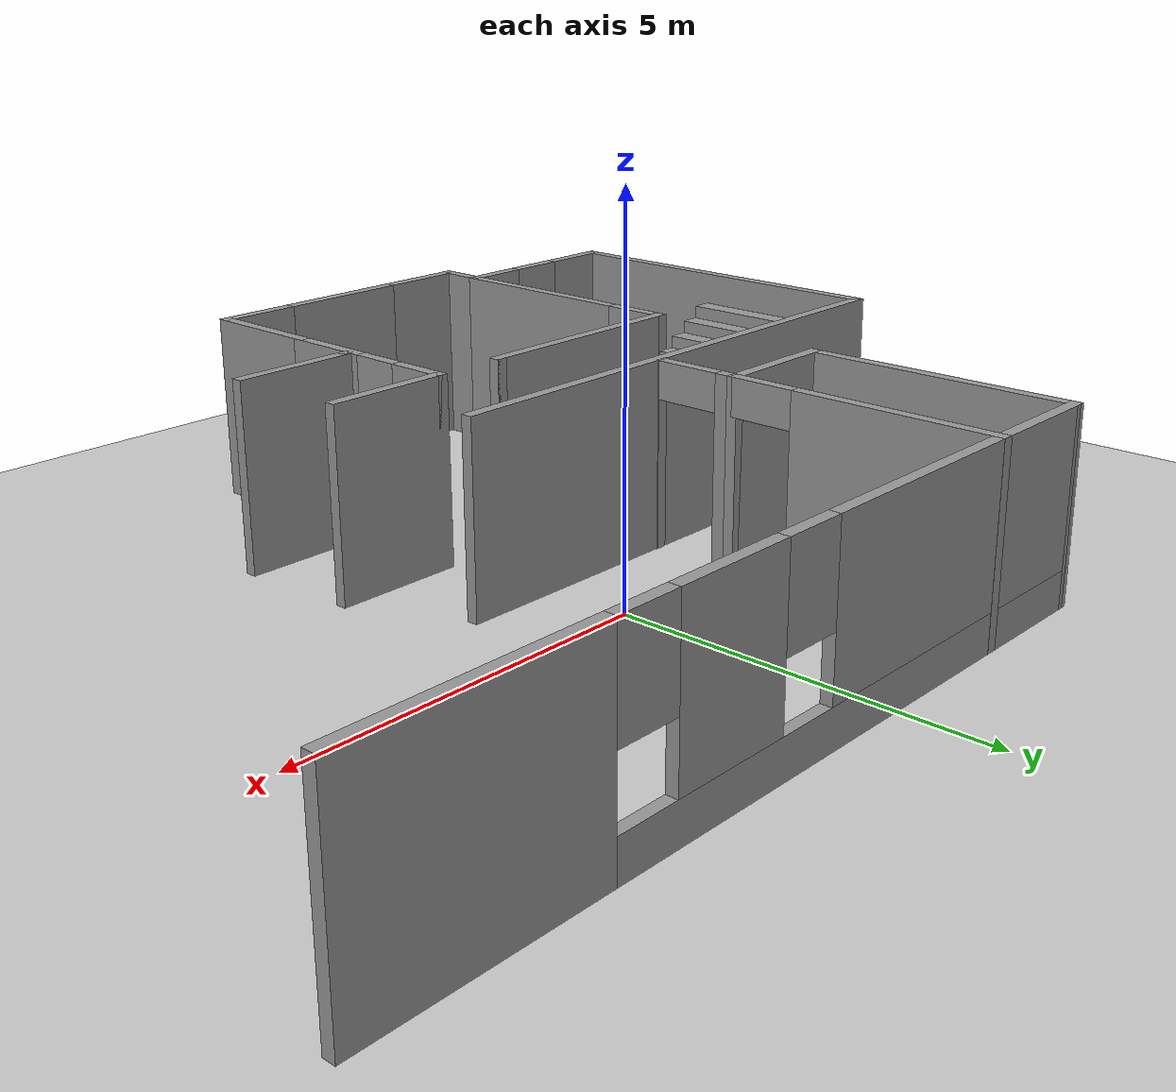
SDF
<sdf version="1.7">
 <world name="default">
  <model name="ground_plane">
   <static>1</static>
   <link name="link">
    <collision name="collision">
     <geometry><plane><normal>0 0 1</normal><size>100 100</size></plane></geometry>
     <surface>
      <contact><collide_bitmask>65535</collide_bitmask></contact>
      <friction><ode><mu>100</mu><mu2>50</mu2></ode></friction>
     </surface>
    </collision>
    <visual name="visual">
     <cast_shadows>0</cast_shadows>
     <geometry><plane><normal>0 0 1</normal><size>100 100</size></plane></geometry>
     <material>
      <script><uri>file://media/materials/scripts/gazebo.material</uri><name>Gazebo/Grey</name></script>
     </material>
    </visual>
   </link>
  </model>
  <model name="Floorplan4">
   <pose>0.528647 -1.59814 0 0 -0 0</pose>
   <link name="Stairs_0">
    <visual name="Stairs_0_Visual_0">
     <pose>-1.48224 -0.300305 0.083333 0 -0 -1.5708</pose>
     <geometry><box><size>1.373 0.259133 0.166667</size></box></geometry>
     <material>
      <script><uri>file://media/materials/scripts/gazebo.material</uri><name>Gazebo/Grey</name></script>
      <ambient>1 1 1 1</ambient>
     </material>
     <meta><layer>0</layer></meta>
    </visual>
    <collision name="Stairs_0_Collision_0">
     <geometry><box><size>1.373 0.259133 0.166667</size></box></geometry>
     <pose>-1.48224 -0.300305 0.083333 0 -0 -1.5708</pose>
    </collision>
    <visual name="Stairs_0_Visual_1">
     <pose>-1.74138 -0.300305 0.25 0 -0 -1.5708</pose>
     <geometry><box><size>1.373 0.259133 0.166667</size></box></geometry>
     <material>
      <script><uri>file://media/materials/scripts/gazebo.material</uri><name>Gazebo/Grey</name></script>
      <ambient>1 1 1 1</ambient>
     </material>
     <meta><layer>0</layer></meta>
    </visual>
    <collision name="Stairs_0_Collision_1">
     <geometry><box><size>1.373 0.259133 0.166667</size></box></geometry>
     <pose>-1.74138 -0.300305 0.25 0 -0 -1.5708</pose>
    </collision>
    <visual name="Stairs_0_Visual_2">
     <pose>-2.00051 -0.300305 0.416667 0 -0 -1.5708</pose>
     <geometry><box><size>1.373 0.259133 0.166667</size></box></geometry>
     <material>
      <script><uri>file://media/materials/scripts/gazebo.material</uri><name>Gazebo/Grey</name></script>
      <ambient>1 1 1 1</ambient>
     </material>
     <meta><layer>0</layer></meta>
    </visual>
    <collision name="Stairs_0_Collision_2">
     <geometry><box><size>1.373 0.259133 0.166667</size></box></geometry>
     <pose>-2.00051 -0.300305 0.416667 0 -0 -1.5708</pose>
    </collision>
    <visual name="Stairs_0_Visual_3">
     <pose>-2.25964 -0.300305 0.583333 0 -0 -1.5708</pose>
     <geometry><box><size>1.373 0.259133 0.166667</size></box></geometry>
     <material>
      <script><uri>file://media/materials/scripts/gazebo.material</uri><name>Gazebo/Grey</name></script>
      <ambient>1 1 1 1</ambient>
     </material>
     <meta><layer>0</layer></meta>
    </visual>
    <collision name="Stairs_0_Collision_3">
     <geometry><box><size>1.373 0.259133 0.166667</size></box></geometry>
     <pose>-2.25964 -0.300305 0.583333 0 -0 -1.5708</pose>
    </collision>
    <visual name="Stairs_0_Visual_4">
     <pose>-2.51878 -0.300305 0.75 0 -0 -1.5708</pose>
     <geometry><box><size>1.373 0.259133 0.166667</size></box></geometry>
     <material>
      <script><uri>file://media/materials/scripts/gazebo.material</uri><name>Gazebo/Grey</name></script>
      <ambient>1 1 1 1</ambient>
     </material>
     <meta><layer>0</layer></meta>
    </visual>
    <collision name="Stairs_0_Collision_4">
     <geometry><box><size>1.373 0.259133 0.166667</size></box></geometry>
     <pose>-2.51878 -0.300305 0.75 0 -0 -1.5708</pose>
    </collision>
    <visual name="Stairs_0_Visual_5">
     <pose>-2.77791 -0.300305 0.916667 0 -0 -1.5708</pose>
     <geometry><box><size>1.373 0.259133 0.166667</size></box></geometry>
     <material>
      <script><uri>file://media/materials/scripts/gazebo.material</uri><name>Gazebo/Grey</name></script>
      <ambient>1 1 1 1</ambient>
     </material>
     <meta><layer>0</layer></meta>
    </visual>
    <collision name="Stairs_0_Collision_5">
     <geometry><box><size>1.373 0.259133 0.166667</size></box></geometry>
     <pose>-2.77791 -0.300305 0.916667 0 -0 -1.5708</pose>
    </collision>
    <visual name="Stairs_0_Visual_6">
     <pose>-3.03704 -0.300305 1.08333 0 -0 -1.5708</pose>
     <geometry><box><size>1.373 0.259133 0.166667</size></box></geometry>
     <material>
      <script><uri>file://media/materials/scripts/gazebo.material</uri><name>Gazebo/Grey</name></script>
      <ambient>1 1 1 1</ambient>
     </material>
     <meta><layer>0</layer></meta>
    </visual>
    <collision name="Stairs_0_Collision_6">
     <geometry><box><size>1.373 0.259133 0.166667</size></box></geometry>
     <pose>-3.03704 -0.300305 1.08333 0 -0 -1.5708</pose>
    </collision>
    <visual name="Stairs_0_Visual_7">
     <pose>-3.29618 -0.300305 1.25 0 -0 -1.5708</pose>
     <geometry><box><size>1.373 0.259133 0.166667</size></box></geometry>
     <material>
      <script><uri>file://media/materials/scripts/gazebo.material</uri><name>Gazebo/Grey</name></script>
      <ambient>1 1 1 1</ambient>
     </material>
     <meta><layer>0</layer></meta>
    </visual>
    <collision name="Stairs_0_Collision_7">
     <geometry><box><size>1.373 0.259133 0.166667</size></box></geometry>
     <pose>-3.29618 -0.300305 1.25 0 -0 -1.5708</pose>
    </collision>
    <visual name="Stairs_0_Visual_8">
     <pose>-3.55531 -0.300305 1.41667 0 -0 -1.5708</pose>
     <geometry><box><size>1.373 0.259133 0.166667</size></box></geometry>
     <material>
      <script><uri>file://media/materials/scripts/gazebo.material</uri><name>Gazebo/Grey</name></script>
      <ambient>1 1 1 1</ambient>
     </material>
     <meta><layer>0</layer></meta>
    </visual>
    <collision name="Stairs_0_Collision_8">
     <geometry><box><size>1.373 0.259133 0.166667</size></box></geometry>
     <pose>-3.55531 -0.300305 1.41667 0 -0 -1.5708</pose>
    </collision>
    <visual name="Stairs_0_Visual_9">
     <pose>-3.81444 -0.300305 1.58333 0 -0 -1.5708</pose>
     <geometry><box><size>1.373 0.259133 0.166667</size></box></geometry>
     <material>
      <script><uri>file://media/materials/scripts/gazebo.material</uri><name>Gazebo/Grey</name></script>
      <ambient>1 1 1 1</ambient>
     </material>
     <meta><layer>0</layer></meta>
    </visual>
    <collision name="Stairs_0_Collision_9">
     <geometry><box><size>1.373 0.259133 0.166667</size></box></geometry>
     <pose>-3.81444 -0.300305 1.58333 0 -0 -1.5708</pose>
    </collision>
    <visual name="Stairs_0_Visual_10">
     <pose>-4.07358 -0.300305 1.75 0 -0 -1.5708</pose>
     <geometry><box><size>1.373 0.259133 0.166667</size></box></geometry>
     <material>
      <script><uri>file://media/materials/scripts/gazebo.material</uri><name>Gazebo/Grey</name></script>
      <ambient>1 1 1 1</ambient>
     </material>
     <meta><layer>0</layer></meta>
    </visual>
    <collision name="Stairs_0_Collision_10">
     <geometry><box><size>1.373 0.259133 0.166667</size></box></geometry>
     <pose>-4.07358 -0.300305 1.75 0 -0 -1.5708</pose>
    </collision>
    <visual name="Stairs_0_Visual_11">
     <pose>-4.33271 -0.300305 1.91667 0 -0 -1.5708</pose>
     <geometry><box><size>1.373 0.259133 0.166667</size></box></geometry>
     <material>
      <script><uri>file://media/materials/scripts/gazebo.material</uri><name>Gazebo/Grey</name></script>
      <ambient>1 1 1 1</ambient>
     </material>
     <meta><layer>0</layer></meta>
    </visual>
    <collision name="Stairs_0_Collision_11">
     <geometry><box><size>1.373 0.259133 0.166667</size></box></geometry>
     <pose>-4.33271 -0.300305 1.91667 0 -0 -1.5708</pose>
    </collision>
    <visual name="Stairs_0_Visual_12">
     <pose>-4.59184 -0.300305 2.08333 0 -0 -1.5708</pose>
     <geometry><box><size>1.373 0.259133 0.166667</size></box></geometry>
     <material>
      <script><uri>file://media/materials/scripts/gazebo.material</uri><name>Gazebo/Grey</name></script>
      <ambient>1 1 1 1</ambient>
     </material>
     <meta><layer>0</layer></meta>
    </visual>
    <collision name="Stairs_0_Collision_12">
     <geometry><box><size>1.373 0.259133 0.166667</size></box></geometry>
     <pose>-4.59184 -0.300305 2.08333 0 -0 -1.5708</pose>
    </collision>
    <visual name="Stairs_0_Visual_13">
     <pose>-4.85098 -0.300305 2.25 0 -0 -1.5708</pose>
     <geometry><box><size>1.373 0.259133 0.166667</size></box></geometry>
     <material>
      <script><uri>file://media/materials/scripts/gazebo.material</uri><name>Gazebo/Grey</name></script>
      <ambient>1 1 1 1</ambient>
     </material>
     <meta><layer>0</layer></meta>
    </visual>
    <collision name="Stairs_0_Collision_13">
     <geometry><box><size>1.373 0.259133 0.166667</size></box></geometry>
     <pose>-4.85098 -0.300305 2.25 0 -0 -1.5708</pose>
    </collision>
    <visual name="Stairs_0_Visual_14">
     <pose>-5.11011 -0.300305 2.41667 0 -0 -1.5708</pose>
     <geometry><box><size>1.373 0.259133 0.166667</size></box></geometry>
     <material>
      <script><uri>file://media/materials/scripts/gazebo.material</uri><name>Gazebo/Grey</name></script>
      <ambient>1 1 1 1</ambient>
     </material>
     <meta><layer>0</layer></meta>
    </visual>
    <collision name="Stairs_0_Collision_14">
     <geometry><box><size>1.373 0.259133 0.166667</size></box></geometry>
     <pose>-5.11011 -0.300305 2.41667 0 -0 -1.5708</pose>
    </collision>
   </link>
   <link name="Wall_20">
    <collision name="Wall_20_Collision">
     <geometry><box><size>7.75 0.15 2.5</size></box></geometry>
     <pose>0 0 1.25 0 -0 0</pose>
    </collision>
    <visual name="Wall_20_Visual">
     <pose>0 0 1.25 0 -0 0</pose>
     <geometry><box><size>7.75 0.15 2.5</size></box></geometry>
     <material>
      <script><uri>file://media/materials/scripts/gazebo.material</uri><name>Gazebo/Grey</name></script>
      <ambient>1 1 1 1</ambient>
     </material>
     <meta><layer>0</layer></meta>
    </visual>
    <pose>-3.05028 0.443986 0 0 -0 3.14159</pose>
   </link>
   <link name="Wall_21">
    <collision name="Wall_21_Collision">
     <geometry><box><size>5.25 0.15 2.5</size></box></geometry>
     <pose>0 0 1.25 0 -0 0</pose>
    </collision>
    <visual name="Wall_21_Visual">
     <pose>0 0 1.25 0 -0 0</pose>
     <geometry><box><size>5.25 0.15 2.5</size></box></geometry>
     <material>
      <script><uri>file://media/materials/scripts/gazebo.material</uri><name>Gazebo/Grey</name></script>
      <ambient>1 1 1 1</ambient>
     </material>
     <meta><layer>0</layer></meta>
    </visual>
    <pose>-6.85028 -2.10601 0 0 -0 -1.5708</pose>
   </link>
   <link name="Wall_22">
    <pose>-5.55028 -4.65601 0 0 -0 0</pose>
    <visual name="Wall_22_Visual_0">
     <pose>-0.858994 0 1.25 0 -0 0</pose>
     <geometry><box><size>1.03201 0.15 2.5</size></box></geometry>
     <material>
      <script><uri>file://media/materials/scripts/gazebo.material</uri><name>Gazebo/Grey</name></script>
      <ambient>1 1 1 1</ambient>
     </material>
     <meta><layer>0</layer></meta>
    </visual>
    <collision name="Wall_22_Collision_0">
     <geometry><box><size>1.03201 0.15 2.5</size></box></geometry>
     <pose>-0.858994 0 1.25 0 -0 0</pose>
    </collision>
    <visual name="Wall_22_Visual_1">
     <pose>0.516006 0 0.25 0 -0 0</pose>
     <geometry><box><size>1.71799 0.15 0.5</size></box></geometry>
     <material>
      <script><uri>file://media/materials/scripts/gazebo.material</uri><name>Gazebo/Grey</name></script>
      <ambient>1 1 1 1</ambient>
     </material>
     <meta><layer>0</layer></meta>
    </visual>
    <collision name="Wall_22_Collision_1">
     <geometry><box><size>1.71799 0.15 0.5</size></box></geometry>
     <pose>0.516006 0 0.25 0 -0 0</pose>
    </collision>
    <visual name="Wall_22_Visual_2">
     <pose>0.916006 0 1.5 0 -0 0</pose>
     <geometry><box><size>0.917989 0.15 2</size></box></geometry>
     <material>
      <script><uri>file://media/materials/scripts/gazebo.material</uri><name>Gazebo/Grey</name></script>
      <ambient>1 1 1 1</ambient>
     </material>
     <meta><layer>0</layer></meta>
    </visual>
    <collision name="Wall_22_Collision_2">
     <geometry><box><size>0.917989 0.15 2</size></box></geometry>
     <pose>0.916006 0 1.5 0 -0 0</pose>
    </collision>
    <visual name="Wall_22_Visual_3">
     <pose>0.057011 0 1.9 0 -0 0</pose>
     <geometry><box><size>0.8 0.15 1.2</size></box></geometry>
     <material>
      <script><uri>file://media/materials/scripts/gazebo.material</uri><name>Gazebo/Grey</name></script>
      <ambient>1 1 1 1</ambient>
     </material>
     <meta><layer>0</layer></meta>
    </visual>
    <collision name="Wall_22_Collision_3">
     <geometry><box><size>0.8 0.15 1.2</size></box></geometry>
     <pose>0.057011 0 1.9 0 -0 0</pose>
    </collision>
   </link>
   <link name="Wall_23">
    <collision name="Wall_23_Collision">
     <geometry><box><size>0.75 0.15 2.5</size></box></geometry>
     <pose>0 0 1.25 0 -0 0</pose>
    </collision>
    <visual name="Wall_23_Visual">
     <pose>0 0 1.25 0 -0 0</pose>
     <geometry><box><size>0.75 0.15 2.5</size></box></geometry>
     <material>
      <script><uri>file://media/materials/scripts/gazebo.material</uri><name>Gazebo/Grey</name></script>
      <ambient>1 1 1 1</ambient>
     </material>
     <meta><layer>0</layer></meta>
    </visual>
    <pose>-4.25028 -4.95601 0 0 -0 -1.5708</pose>
   </link>
   <link name="Wall_24">
    <pose>-2.20028 -5.25601 0 0 -0 0</pose>
    <visual name="Wall_24_Visual_0">
     <pose>-1.49218 0 1.25 0 -0 0</pose>
     <geometry><box><size>1.26565 0.15 2.5</size></box></geometry>
     <material>
      <script><uri>file://media/materials/scripts/gazebo.material</uri><name>Gazebo/Grey</name></script>
      <ambient>1 1 1 1</ambient>
     </material>
     <meta><layer>0</layer></meta>
    </visual>
    <collision name="Wall_24_Collision_0">
     <geometry><box><size>1.26565 0.15 2.5</size></box></geometry>
     <pose>-1.49218 0 1.25 0 -0 0</pose>
    </collision>
    <visual name="Wall_24_Visual_1">
     <pose>0.632824 0 0.25 0 -0 0</pose>
     <geometry><box><size>2.98435 0.15 0.5</size></box></geometry>
     <material>
      <script><uri>file://media/materials/scripts/gazebo.material</uri><name>Gazebo/Grey</name></script>
      <ambient>1 1 1 1</ambient>
     </material>
     <meta><layer>0</layer></meta>
    </visual>
    <collision name="Wall_24_Collision_1">
     <geometry><box><size>2.98435 0.15 0.5</size></box></geometry>
     <pose>0.632824 0 0.25 0 -0 0</pose>
    </collision>
    <visual name="Wall_24_Visual_2">
     <pose>1.55421 0 1.5 0 -0 0</pose>
     <geometry><box><size>1.14157 0.15 2</size></box></geometry>
     <material>
      <script><uri>file://media/materials/scripts/gazebo.material</uri><name>Gazebo/Grey</name></script>
      <ambient>1 1 1 1</ambient>
     </material>
     <meta><layer>0</layer></meta>
    </visual>
    <collision name="Wall_24_Collision_2">
     <geometry><box><size>1.14157 0.15 2</size></box></geometry>
     <pose>1.55421 0 1.5 0 -0 0</pose>
    </collision>
    <visual name="Wall_24_Visual_3">
     <pose>0.062037 0 1.9 0 -0 0</pose>
     <geometry><box><size>1.84278 0.15 1.2</size></box></geometry>
     <material>
      <script><uri>file://media/materials/scripts/gazebo.material</uri><name>Gazebo/Grey</name></script>
      <ambient>1 1 1 1</ambient>
     </material>
     <meta><layer>0</layer></meta>
    </visual>
    <collision name="Wall_24_Collision_3">
     <geometry><box><size>1.84278 0.15 1.2</size></box></geometry>
     <pose>0.062037 0 1.9 0 -0 0</pose>
    </collision>
   </link>
   <link name="Wall_25">
    <collision name="Wall_25_Collision">
     <geometry><box><size>1.75 0.15 2.5</size></box></geometry>
     <pose>0 0 1.25 0 -0 0</pose>
    </collision>
    <visual name="Wall_25_Visual">
     <pose>0 0 1.25 0 -0 0</pose>
     <geometry><box><size>1.75 0.15 2.5</size></box></geometry>
     <material>
      <script><uri>file://media/materials/scripts/gazebo.material</uri><name>Gazebo/Grey</name></script>
      <ambient>1 1 1 1</ambient>
     </material>
     <meta><layer>0</layer></meta>
    </visual>
    <pose>-0.150279 -4.45601 0 0 -0 1.5708</pose>
   </link>
   <link name="Wall_26">
    <pose>-0.150279 -2.35601 0 0 -0 1.5708</pose>
    <visual name="Wall_26_Visual_0">
     <pose>-0.749014 0 1.25 0 -0 0</pose>
     <geometry><box><size>1.25197 0.15 2.5</size></box></geometry>
     <material>
      <script><uri>file://media/materials/scripts/gazebo.material</uri><name>Gazebo/Grey</name></script>
      <ambient>1 1 1 1</ambient>
     </material>
     <meta><layer>0</layer></meta>
    </visual>
    <collision name="Wall_26_Collision_0">
     <geometry><box><size>1.25197 0.15 2.5</size></box></geometry>
     <pose>-0.749014 0 1.25 0 -0 0</pose>
    </collision>
    <visual name="Wall_26_Visual_1">
     <pose>0.956973 0 1.25 0 -0 0</pose>
     <geometry><box><size>0.836053 0.15 2.5</size></box></geometry>
     <material>
      <script><uri>file://media/materials/scripts/gazebo.material</uri><name>Gazebo/Grey</name></script>
      <ambient>1 1 1 1</ambient>
     </material>
     <meta><layer>0</layer></meta>
    </visual>
    <collision name="Wall_26_Collision_1">
     <geometry><box><size>0.836053 0.15 2.5</size></box></geometry>
     <pose>0.956973 0 1.25 0 -0 0</pose>
    </collision>
    <visual name="Wall_26_Visual_2">
     <pose>0.20796 0 2.25 0 -0 0</pose>
     <geometry><box><size>0.661975 0.15 0.5</size></box></geometry>
     <material>
      <script><uri>file://media/materials/scripts/gazebo.material</uri><name>Gazebo/Grey</name></script>
      <ambient>1 1 1 1</ambient>
     </material>
     <meta><layer>0</layer></meta>
    </visual>
    <collision name="Wall_26_Collision_2">
     <geometry><box><size>0.661975 0.15 0.5</size></box></geometry>
     <pose>0.20796 0 2.25 0 -0 0</pose>
    </collision>
   </link>
   <link name="Wall_27">
    <collision name="Wall_27_Collision">
     <geometry><box><size>1.75 0.15 2.5</size></box></geometry>
     <pose>0 0 1.25 0 -0 0</pose>
    </collision>
    <visual name="Wall_27_Visual">
     <pose>0 0 1.25 0 -0 0</pose>
     <geometry><box><size>1.75 0.15 2.5</size></box></geometry>
     <material>
      <script><uri>file://media/materials/scripts/gazebo.material</uri><name>Gazebo/Grey</name></script>
      <ambient>1 1 1 1</ambient>
     </material>
     <meta><layer>0</layer></meta>
    </visual>
    <pose>0.649721 -1.05601 0 0 -0 0</pose>
   </link>
   <link name="Wall_30">
    <collision name="Wall_30_Collision">
     <geometry><box><size>1.75 0.15 2.5</size></box></geometry>
     <pose>0 0 1.25 0 -0 0</pose>
    </collision>
    <visual name="Wall_30_Visual">
     <pose>0 0 1.25 0 -0 0</pose>
     <geometry><box><size>1.75 0.15 2.5</size></box></geometry>
     <material>
      <script><uri>file://media/materials/scripts/gazebo.material</uri><name>Gazebo/Grey</name></script>
      <ambient>1 1 1 1</ambient>
     </material>
     <meta><layer>0</layer></meta>
    </visual>
    <pose>0.749721 -2.65601 0 0 -0 3.14159</pose>
   </link>
   <link name="Wall_31">
    <collision name="Wall_31_Collision">
     <geometry><box><size>0.15 0.15 2.5</size></box></geometry>
     <pose>0 0 1.25 0 -0 0</pose>
    </collision>
    <visual name="Wall_31_Visual">
     <pose>0 0 1.25 0 -0 0</pose>
     <geometry><box><size>0.15 0.15 2.5</size></box></geometry>
     <material>
      <script><uri>file://media/materials/scripts/gazebo.material</uri><name>Gazebo/Grey</name></script>
      <ambient>1 1 1 1</ambient>
     </material>
     <meta><layer>0</layer></meta>
    </visual>
    <pose>-0.050279 -2.65601 0 0 -0 0</pose>
   </link>
   <link name="Wall_33">
    <pose>-4.25028 -2.85601 0 0 -0 1.5708</pose>
    <visual name="Wall_33_Visual_0">
     <pose>-0.463048 0 1.25 0 -0 0</pose>
     <geometry><box><size>2.8239 0.15 2.5</size></box></geometry>
     <material>
      <script><uri>file://media/materials/scripts/gazebo.material</uri><name>Gazebo/Grey</name></script>
      <ambient>1 1 1 1</ambient>
     </material>
     <meta><layer>0</layer></meta>
    </visual>
    <collision name="Wall_33_Collision_0">
     <geometry><box><size>2.8239 0.15 2.5</size></box></geometry>
     <pose>-0.463048 0 1.25 0 -0 0</pose>
    </collision>
    <visual name="Wall_33_Visual_1">
     <pose>1.7945 0 1.25 0 -0 0</pose>
     <geometry><box><size>0.161005 0.15 2.5</size></box></geometry>
     <material>
      <script><uri>file://media/materials/scripts/gazebo.material</uri><name>Gazebo/Grey</name></script>
      <ambient>1 1 1 1</ambient>
     </material>
     <meta><layer>0</layer></meta>
    </visual>
    <collision name="Wall_33_Collision_1">
     <geometry><box><size>0.161005 0.15 2.5</size></box></geometry>
     <pose>1.7945 0 1.25 0 -0 0</pose>
    </collision>
    <visual name="Wall_33_Visual_2">
     <pose>1.33145 0 2.25 0 -0 0</pose>
     <geometry><box><size>0.765091 0.15 0.5</size></box></geometry>
     <material>
      <script><uri>file://media/materials/scripts/gazebo.material</uri><name>Gazebo/Grey</name></script>
      <ambient>1 1 1 1</ambient>
     </material>
     <meta><layer>0</layer></meta>
    </visual>
    <collision name="Wall_33_Collision_2">
     <geometry><box><size>0.765091 0.15 0.5</size></box></geometry>
     <pose>1.33145 0 2.25 0 -0 0</pose>
    </collision>
   </link>
   <link name="Wall_34">
    <collision name="Wall_34_Collision">
     <geometry><box><size>3.25 0.15 2.5</size></box></geometry>
     <pose>0 0 1.25 0 -0 0</pose>
    </collision>
    <visual name="Wall_34_Visual">
     <pose>0 0 1.25 0 -0 0</pose>
     <geometry><box><size>3.25 0.15 2.5</size></box></geometry>
     <material>
      <script><uri>file://media/materials/scripts/gazebo.material</uri><name>Gazebo/Grey</name></script>
      <ambient>1 1 1 1</ambient>
     </material>
     <meta><layer>0</layer></meta>
    </visual>
    <pose>-2.70028 -1.05601 0 0 -0 0</pose>
   </link>
   <link name="Wall_35">
    <collision name="Wall_35_Collision">
     <geometry><box><size>0.15 0.15 2.5</size></box></geometry>
     <pose>0 0 1.25 0 -0 0</pose>
    </collision>
    <visual name="Wall_35_Visual">
     <pose>0 0 1.25 0 -0 0</pose>
     <geometry><box><size>0.15 0.15 2.5</size></box></geometry>
     <material>
      <script><uri>file://media/materials/scripts/gazebo.material</uri><name>Gazebo/Grey</name></script>
      <ambient>1 1 1 1</ambient>
     </material>
     <meta><layer>0</layer></meta>
    </visual>
    <pose>-1.15028 -1.05601 0 0 -0 0</pose>
   </link>
   <link name="Wall_5">
    <pose>1.34854 5.23924 0 0 -0 3.14159</pose>
    <visual name="Wall_5_Visual_0">
     <pose>-3.98357 0 1.25 0 -0 0</pose>
     <geometry><box><size>3.03285 0.15 2.5</size></box></geometry>
     <material>
      <script><uri>file://media/materials/scripts/gazebo.material</uri><name>Gazebo/Grey</name></script>
      <ambient>1 1 1 1</ambient>
     </material>
     <meta><layer>0</layer></meta>
    </visual>
    <collision name="Wall_5_Collision_0">
     <geometry><box><size>3.03285 0.15 2.5</size></box></geometry>
     <pose>-3.98357 0 1.25 0 -0 0</pose>
    </collision>
    <visual name="Wall_5_Visual_1">
     <pose>1.51643 0 0.25 0 -0 0</pose>
     <geometry><box><size>7.96715 0.15 0.5</size></box></geometry>
     <material>
      <script><uri>file://media/materials/scripts/gazebo.material</uri><name>Gazebo/Grey</name></script>
      <ambient>1 1 1 1</ambient>
     </material>
     <meta><layer>0</layer></meta>
    </visual>
    <collision name="Wall_5_Collision_1">
     <geometry><box><size>7.96715 0.15 0.5</size></box></geometry>
     <pose>1.51643 0 0.25 0 -0 0</pose>
    </collision>
    <visual name="Wall_5_Visual_2">
     <pose>-0.899688 0 1.5 0 -0 0</pose>
     <geometry><box><size>1.53492 0.15 2</size></box></geometry>
     <material>
      <script><uri>file://media/materials/scripts/gazebo.material</uri><name>Gazebo/Grey</name></script>
      <ambient>1 1 1 1</ambient>
     </material>
     <meta><layer>0</layer></meta>
    </visual>
    <collision name="Wall_5_Collision_2">
     <geometry><box><size>1.53492 0.15 2</size></box></geometry>
     <pose>-0.899688 0 1.5 0 -0 0</pose>
    </collision>
    <visual name="Wall_5_Visual_3">
     <pose>3.08388 0 1.5 0 -0 0</pose>
     <geometry><box><size>4.83223 0.15 2</size></box></geometry>
     <material>
      <script><uri>file://media/materials/scripts/gazebo.material</uri><name>Gazebo/Grey</name></script>
      <ambient>1 1 1 1</ambient>
     </material>
     <meta><layer>0</layer></meta>
    </visual>
    <collision name="Wall_5_Collision_3">
     <geometry><box><size>4.83223 0.15 2</size></box></geometry>
     <pose>3.08388 0 1.5 0 -0 0</pose>
    </collision>
    <visual name="Wall_5_Visual_4">
     <pose>-2.06715 0 1.9 0 -0 0</pose>
     <geometry><box><size>0.8 0.15 1.2</size></box></geometry>
     <material>
      <script><uri>file://media/materials/scripts/gazebo.material</uri><name>Gazebo/Grey</name></script>
      <ambient>1 1 1 1</ambient>
     </material>
     <meta><layer>0</layer></meta>
    </visual>
    <collision name="Wall_5_Collision_4">
     <geometry><box><size>0.8 0.15 1.2</size></box></geometry>
     <pose>-2.06715 0 1.9 0 -0 0</pose>
    </collision>
    <visual name="Wall_5_Visual_5">
     <pose>0.26777 0 1.9 0 -0 0</pose>
     <geometry><box><size>0.8 0.15 1.2</size></box></geometry>
     <material>
      <script><uri>file://media/materials/scripts/gazebo.material</uri><name>Gazebo/Grey</name></script>
      <ambient>1 1 1 1</ambient>
     </material>
     <meta><layer>0</layer></meta>
    </visual>
    <collision name="Wall_5_Collision_5">
     <geometry><box><size>0.8 0.15 1.2</size></box></geometry>
     <pose>0.26777 0 1.9 0 -0 0</pose>
    </collision>
   </link>
   <link name="Wall_6">
    <collision name="Wall_6_Collision">
     <geometry><box><size>3.69809 0.15 2.5</size></box></geometry>
     <pose>0 0 1.25 0 -0 0</pose>
    </collision>
    <visual name="Wall_6_Visual">
     <pose>0 0 1.25 0 -0 0</pose>
     <geometry><box><size>3.69809 0.15 2.5</size></box></geometry>
     <material>
      <script><uri>file://media/materials/scripts/gazebo.material</uri><name>Gazebo/Grey</name></script>
      <ambient>1 1 1 1</ambient>
     </material>
     <meta><layer>0</layer></meta>
    </visual>
    <pose>-4.06346 3.46525 0 0 -0 -1.56347</pose>
   </link>
   <link name="Wall_7">
    <collision name="Wall_7_Collision">
     <geometry><box><size>1.75 0.15 2.5</size></box></geometry>
     <pose>0 0 1.25 0 -0 0</pose>
    </collision>
    <visual name="Wall_7_Visual">
     <pose>0 0 1.25 0 -0 0</pose>
     <geometry><box><size>1.75 0.15 2.5</size></box></geometry>
     <material>
      <script><uri>file://media/materials/scripts/gazebo.material</uri><name>Gazebo/Grey</name></script>
      <ambient>1 1 1 1</ambient>
     </material>
     <meta><layer>0</layer></meta>
    </visual>
    <pose>-3.25046 1.66525 0 0 -0 0</pose>
   </link>
   <link name="Wall_74">
    <pose>-2.45046 1.11525 0 0 -0 1.5708</pose>
    <visual name="Wall_74_Visual_0">
     <pose>-0.603613 0 1.25 0 -0 0</pose>
     <geometry><box><size>0.042774 0.15 2.5</size></box></geometry>
     <material>
      <script><uri>file://media/materials/scripts/gazebo.material</uri><name>Gazebo/Grey</name></script>
      <ambient>1 1 1 1</ambient>
     </material>
     <meta><layer>0</layer></meta>
    </visual>
    <collision name="Wall_74_Collision_0">
     <geometry><box><size>0.042774 0.15 2.5</size></box></geometry>
     <pose>-0.603613 0 1.25 0 -0 0</pose>
    </collision>
    <visual name="Wall_74_Visual_1">
     <pose>0.461475 0 1.25 0 -0 0</pose>
     <geometry><box><size>0.32705 0.15 2.5</size></box></geometry>
     <material>
      <script><uri>file://media/materials/scripts/gazebo.material</uri><name>Gazebo/Grey</name></script>
      <ambient>1 1 1 1</ambient>
     </material>
     <meta><layer>0</layer></meta>
    </visual>
    <collision name="Wall_74_Collision_1">
     <geometry><box><size>0.32705 0.15 2.5</size></box></geometry>
     <pose>0.461475 0 1.25 0 -0 0</pose>
    </collision>
    <visual name="Wall_74_Visual_2">
     <pose>-0.142138 0 2.25 0 -0 0</pose>
     <geometry><box><size>0.880176 0.15 0.5</size></box></geometry>
     <material>
      <script><uri>file://media/materials/scripts/gazebo.material</uri><name>Gazebo/Grey</name></script>
      <ambient>1 1 1 1</ambient>
     </material>
     <meta><layer>0</layer></meta>
    </visual>
    <collision name="Wall_74_Collision_2">
     <geometry><box><size>0.880176 0.15 0.5</size></box></geometry>
     <pose>-0.142138 0 2.25 0 -0 0</pose>
    </collision>
   </link>
   <link name="Wall_8">
    <pose>-2.44399 3.45014 0 0 -0 1.56717</pose>
    <visual name="Wall_8_Visual_0">
     <pose>-1.83824 0 1.25 0 -0 0</pose>
     <geometry><box><size>0.043331 0.15 2.5</size></box></geometry>
     <material>
      <script><uri>file://media/materials/scripts/gazebo.material</uri><name>Gazebo/Grey</name></script>
      <ambient>1 1 1 1</ambient>
     </material>
     <meta><layer>0</layer></meta>
    </visual>
    <collision name="Wall_8_Collision_0">
     <geometry><box><size>0.043331 0.15 2.5</size></box></geometry>
     <pose>-1.83824 0 1.25 0 -0 0</pose>
    </collision>
    <visual name="Wall_8_Visual_1">
     <pose>0.471666 0 1.25 0 -0 0</pose>
     <geometry><box><size>2.77648 0.15 2.5</size></box></geometry>
     <material>
      <script><uri>file://media/materials/scripts/gazebo.material</uri><name>Gazebo/Grey</name></script>
      <ambient>1 1 1 1</ambient>
     </material>
     <meta><layer>0</layer></meta>
    </visual>
    <collision name="Wall_8_Collision_1">
     <geometry><box><size>2.77648 0.15 2.5</size></box></geometry>
     <pose>0.471666 0 1.25 0 -0 0</pose>
    </collision>
    <visual name="Wall_8_Visual_2">
     <pose>-1.36658 0 2.25 0 -0 0</pose>
     <geometry><box><size>0.9 0.15 0.5</size></box></geometry>
     <material>
      <script><uri>file://media/materials/scripts/gazebo.material</uri><name>Gazebo/Grey</name></script>
      <ambient>1 1 1 1</ambient>
     </material>
     <meta><layer>0</layer></meta>
    </visual>
    <collision name="Wall_8_Collision_2">
     <geometry><box><size>0.9 0.15 0.5</size></box></geometry>
     <pose>-1.36658 0 2.25 0 -0 0</pose>
    </collision>
   </link>
   <link name="Wall_9">
    <collision name="Wall_9_Collision">
     <geometry><box><size>0.15 0.15 2.5</size></box></geometry>
     <pose>0 0 1.25 0 -0 0</pose>
    </collision>
    <visual name="Wall_9_Visual">
     <pose>0 0 1.25 0 -0 0</pose>
     <geometry><box><size>0.15 0.15 2.5</size></box></geometry>
     <material>
      <script><uri>file://media/materials/scripts/gazebo.material</uri><name>Gazebo/Grey</name></script>
      <ambient>1 1 1 1</ambient>
     </material>
     <meta><layer>0</layer></meta>
    </visual>
    <pose>-2.43106 5.2415 0 0 -0 0</pose>
   </link>
   <static>1</static>
  </model>
 </world>
</sdf>
